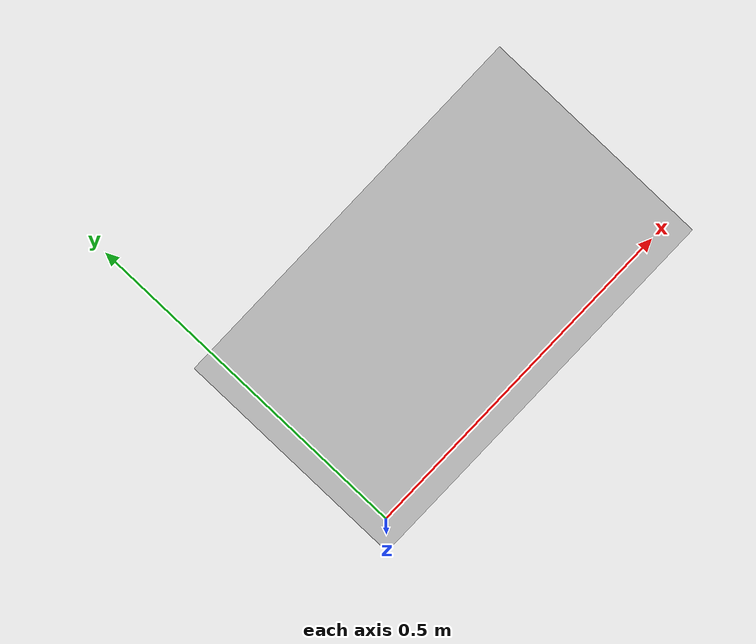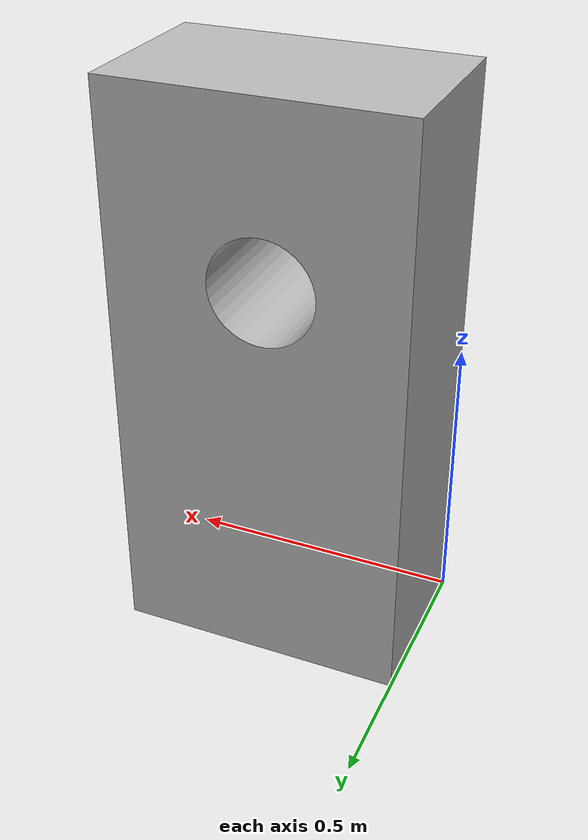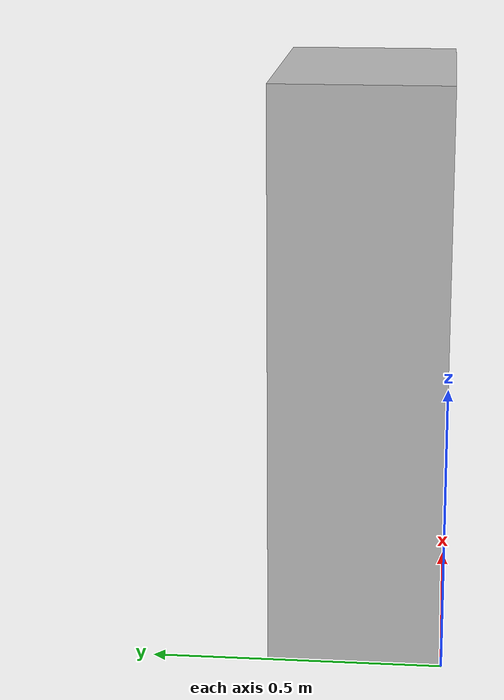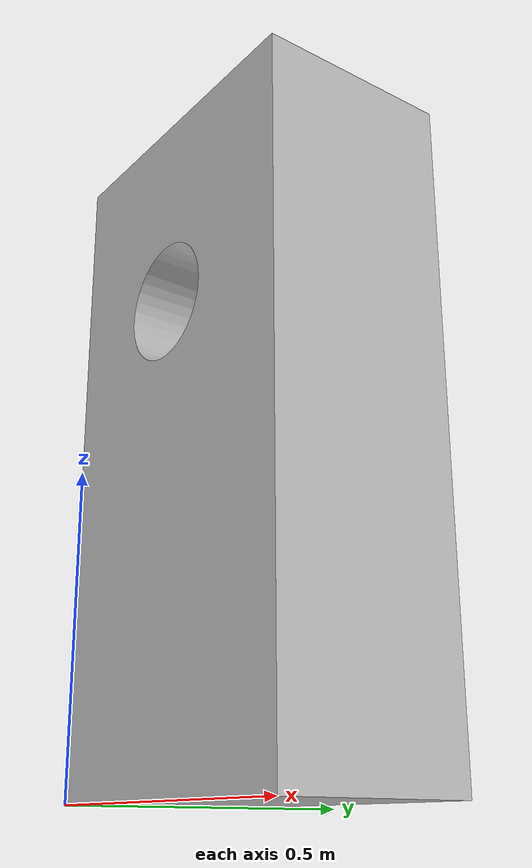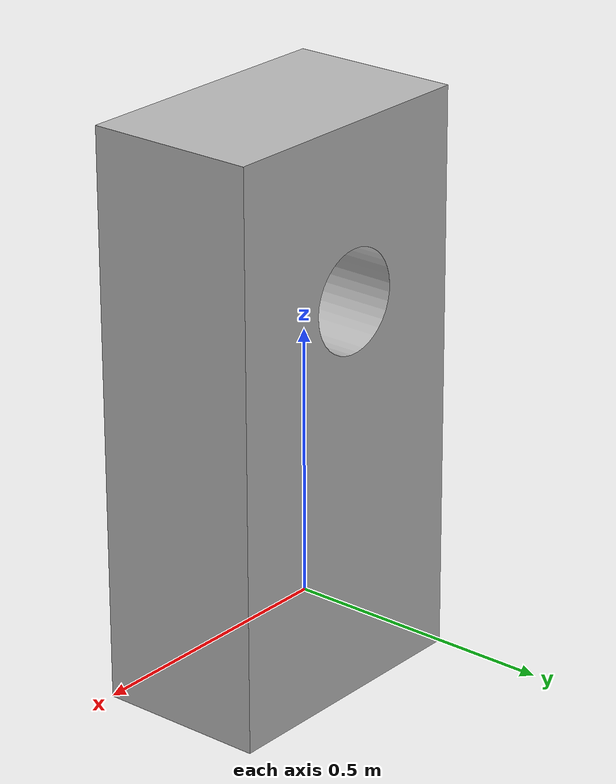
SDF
<?xml version="1.0"?>
<sdf version='1.0'>
    <model name="test_box">
        <link name="test_box">
            <pose>0.0 0.0 0.0 0 0 0 </pose>
            <inertial>
                <mass>0.50</mass>
		<inertia ixx="0.4" ixy="0.0" ixz="0.0" iyy="0.4" iyz="0.0" izz="0.2"/>
            </inertial>
            <visual name="visual">
            <geometry>
                <mesh>
                    <uri>model://test_box/meshes/test_box.dae</uri>
                    <scale>0.01 0.01 0.01</scale>
                </mesh>
            </geometry>
            </visual>
            <collision name="collision">
                <geometry>
                    <mesh>
                        <uri>model://test_box/meshes/test_box.dae</uri>
                        <scale>1 1 1</scale>
                    </mesh>
                </geometry>
            </collision>
        </link>
    </model>
</sdf>
